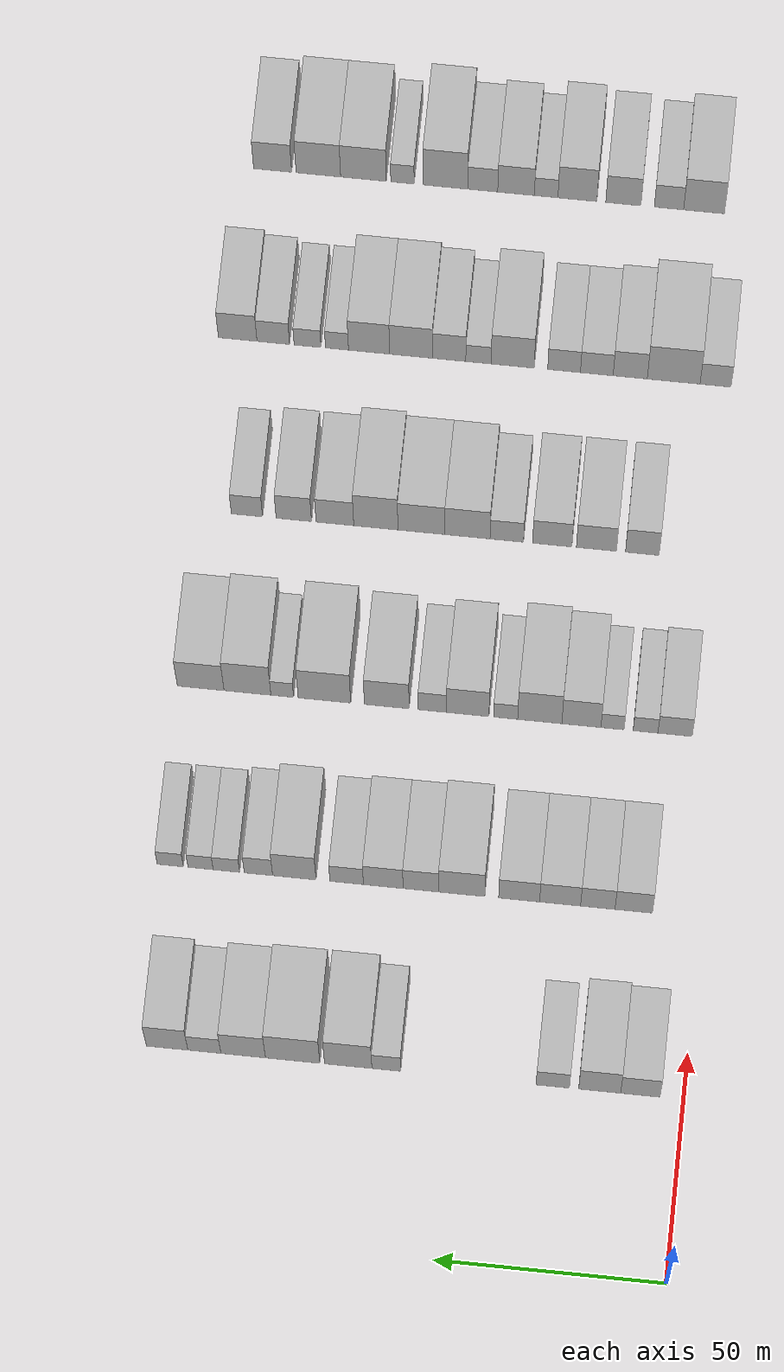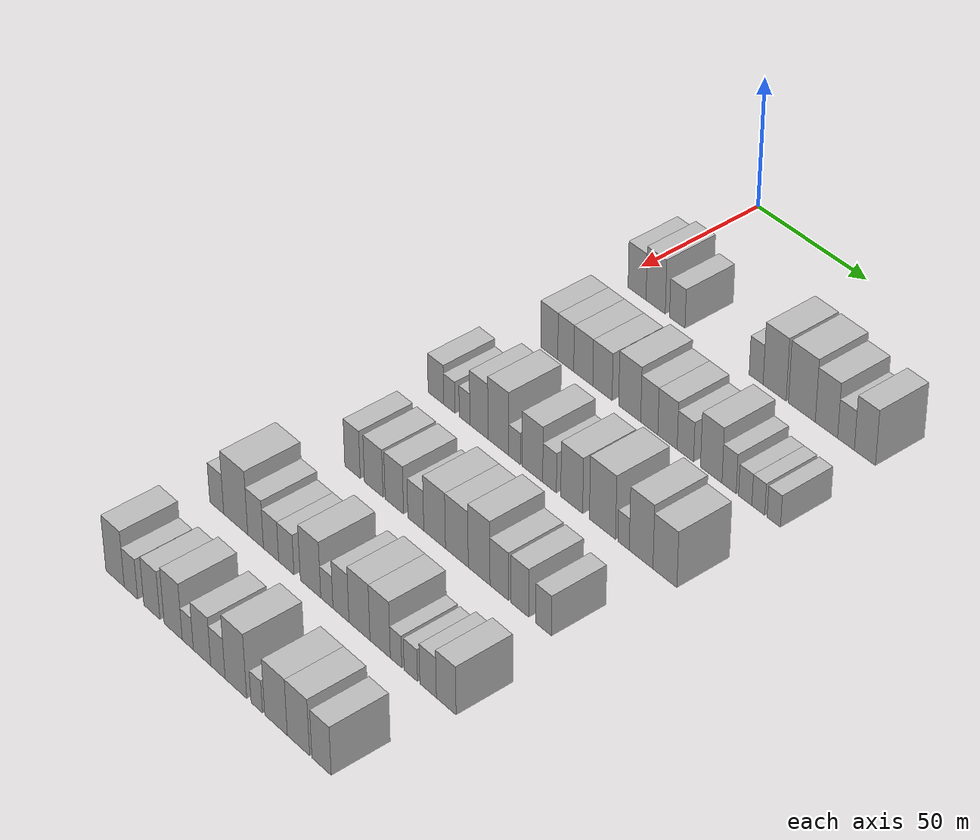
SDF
<sdf version="1.6">
 <world name="default">
  <model name="building_72">
   <static>1</static>
   <pose>50.0000 9.4047 0 0.000000 0.000000 0.000000</pose>
   <link name="link">
    <pose>0 0 9.00 0 0 0</pose>
    <collision name="collision"><geometry><box><size>20.0000 8.4720 18.0000</size></box></geometry></collision>
    <visual name="visual">
     <cast_shadows>0</cast_shadows>
     <geometry><box><size>20.0000 8.4720 18.0000</size></box></geometry>
     <material>
      <script>
       <uri>model://HANNAS_wall/materials/scripts</uri>
       <uri>model://HANNAS_wall/materials/textures</uri>
       <name>vrc/HANNAS_wall</name>
      </script>
     </material>
    </visual>
   </link>
  </model>
  <model name="building_73">
   <static>1</static>
   <pose>50.0000 18.1505 0 0.000000 0.000000 0.000000</pose>
   <link name="link">
    <pose>0 0 10.50 0 0 0</pose>
    <collision name="collision"><geometry><box><size>20.0000 9.0196 21.0000</size></box></geometry></collision>
    <visual name="visual">
     <cast_shadows>0</cast_shadows>
     <geometry><box><size>20.0000 9.0196 21.0000</size></box></geometry>
     <material>
      <script>
       <uri>model://HANNAS_wall/materials/scripts</uri>
       <uri>model://HANNAS_wall/materials/textures</uri>
       <name>vrc/HANNAS_wall</name>
      </script>
     </material>
    </visual>
   </link>
  </model>
  <model name="building_74">
   <static>1</static>
   <pose>50.0000 28.2529 0 0.000000 0.000000 0.000000</pose>
   <link name="link">
    <pose>0 0 7.50 0 0 0</pose>
    <collision name="collision"><geometry><box><size>20.0000 7.1850 15.0000</size></box></geometry></collision>
    <visual name="visual">
     <cast_shadows>0</cast_shadows>
     <geometry><box><size>20.0000 7.1850 15.0000</size></box></geometry>
     <material>
      <script>
       <uri>model://HANNAS_wall/materials/scripts</uri>
       <uri>model://HANNAS_wall/materials/textures</uri>
       <name>vrc/HANNAS_wall</name>
      </script>
     </material>
    </visual>
   </link>
  </model>
  <model name="building_75">
   <static>1</static>
   <pose>50.0000 64.1565 0 0.000000 0.000000 0.000000</pose>
   <link name="link">
    <pose>0 0 7.50 0 0 0</pose>
    <collision name="collision"><geometry><box><size>20.0000 6.2074 15.0000</size></box></geometry></collision>
    <visual name="visual">
     <cast_shadows>0</cast_shadows>
     <geometry><box><size>20.0000 6.2074 15.0000</size></box></geometry>
     <material>
      <script>
       <uri>model://HANNAS_wall/materials/scripts</uri>
       <uri>model://HANNAS_wall/materials/textures</uri>
       <name>vrc/HANNAS_wall</name>
      </script>
     </material>
    </visual>
   </link>
  </model>
  <model name="building_76">
   <static>1</static>
   <pose>50.0000 72.3651 0 0.000000 0.000000 0.000000</pose>
   <link name="link">
    <pose>0 0 12.00 0 0 0</pose>
    <collision name="collision"><geometry><box><size>20.0000 10.2096 24.0000</size></box></geometry></collision>
    <visual name="visual">
     <cast_shadows>0</cast_shadows>
     <geometry><box><size>20.0000 10.2096 24.0000</size></box></geometry>
     <material>
      <script>
       <uri>model://HANNAS_wall/materials/scripts</uri>
       <uri>model://HANNAS_wall/materials/textures</uri>
       <name>vrc/HANNAS_wall</name>
      </script>
     </material>
    </visual>
   </link>
  </model>
  <model name="building_77">
   <static>1</static>
   <pose>50.0000 84.3495 0 0.000000 0.000000 0.000000</pose>
   <link name="link">
    <pose>0 0 12.00 0 0 0</pose>
    <collision name="collision"><geometry><box><size>20.0000 11.7593 24.0000</size></box></geometry></collision>
    <visual name="visual">
     <cast_shadows>0</cast_shadows>
     <geometry><box><size>20.0000 11.7593 24.0000</size></box></geometry>
     <material>
      <script>
       <uri>model://HANNAS_wall/materials/scripts</uri>
       <uri>model://HANNAS_wall/materials/textures</uri>
       <name>vrc/HANNAS_wall</name>
      </script>
     </material>
    </visual>
   </link>
  </model>
  <model name="building_78">
   <static>1</static>
   <pose>50.0000 95.0453 0 0.000000 0.000000 0.000000</pose>
   <link name="link">
    <pose>0 0 10.50 0 0 0</pose>
    <collision name="collision"><geometry><box><size>20.0000 9.6323 21.0000</size></box></geometry></collision>
    <visual name="visual">
     <cast_shadows>0</cast_shadows>
     <geometry><box><size>20.0000 9.6323 21.0000</size></box></geometry>
     <material>
      <script>
       <uri>model://HANNAS_wall/materials/scripts</uri>
       <uri>model://HANNAS_wall/materials/textures</uri>
       <name>vrc/HANNAS_wall</name>
      </script>
     </material>
    </visual>
   </link>
  </model>
  <model name="building_79">
   <static>1</static>
   <pose>50.0000 103.4355 0 0.000000 0.000000 0.000000</pose>
   <link name="link">
    <pose>0 0 7.50 0 0 0</pose>
    <collision name="collision"><geometry><box><size>20.0000 7.1480 15.0000</size></box></geometry></collision>
    <visual name="visual">
     <cast_shadows>0</cast_shadows>
     <geometry><box><size>20.0000 7.1480 15.0000</size></box></geometry>
     <material>
      <script>
       <uri>model://HANNAS_wall/materials/scripts</uri>
       <uri>model://HANNAS_wall/materials/textures</uri>
       <name>vrc/HANNAS_wall</name>
      </script>
     </material>
    </visual>
   </link>
  </model>
  <model name="building_80">
   <static>1</static>
   <pose>50.0000 111.4917 0 0.000000 0.000000 0.000000</pose>
   <link name="link">
    <pose>0 0 10.50 0 0 0</pose>
    <collision name="collision"><geometry><box><size>20.0000 8.9645 21.0000</size></box></geometry></collision>
    <visual name="visual">
     <cast_shadows>0</cast_shadows>
     <geometry><box><size>20.0000 8.9645 21.0000</size></box></geometry>
     <material>
      <script>
       <uri>model://HANNAS_wall/materials/scripts</uri>
       <uri>model://HANNAS_wall/materials/textures</uri>
       <name>vrc/HANNAS_wall</name>
      </script>
     </material>
    </visual>
   </link>
  </model>
  <model name="building_209">
   <static>1</static>
   <pose>90.0000 14.5607 0 0.000000 0.000000 0.000000</pose>
   <link name="link">
    <pose>0 0 9.00 0 0 0</pose>
    <collision name="collision"><geometry><box><size>20.0000 8.1096 18.0000</size></box></geometry></collision>
    <visual name="visual">
     <cast_shadows>0</cast_shadows>
     <geometry><box><size>20.0000 8.1096 18.0000</size></box></geometry>
     <material>
      <script>
       <uri>model://HANNAS_wall/materials/scripts</uri>
       <uri>model://HANNAS_wall/materials/textures</uri>
       <name>vrc/HANNAS_wall</name>
      </script>
     </material>
    </visual>
   </link>
  </model>
  <model name="building_210">
   <static>1</static>
   <pose>90.0000 22.3473 0 0.000000 0.000000 0.000000</pose>
   <link name="link">
    <pose>0 0 9.00 0 0 0</pose>
    <collision name="collision"><geometry><box><size>20.0000 7.4636 18.0000</size></box></geometry></collision>
    <visual name="visual">
     <cast_shadows>0</cast_shadows>
     <geometry><box><size>20.0000 7.4636 18.0000</size></box></geometry>
     <material>
      <script>
       <uri>model://HANNAS_wall/materials/scripts</uri>
       <uri>model://HANNAS_wall/materials/textures</uri>
       <name>vrc/HANNAS_wall</name>
      </script>
     </material>
    </visual>
   </link>
  </model>
  <model name="building_211">
   <static>1</static>
   <pose>90.0000 30.5261 0 0.000000 0.000000 0.000000</pose>
   <link name="link">
    <pose>0 0 9.00 0 0 0</pose>
    <collision name="collision"><geometry><box><size>20.0000 8.8940 18.0000</size></box></geometry></collision>
    <visual name="visual">
     <cast_shadows>0</cast_shadows>
     <geometry><box><size>20.0000 8.8940 18.0000</size></box></geometry>
     <material>
      <script>
       <uri>model://HANNAS_wall/materials/scripts</uri>
       <uri>model://HANNAS_wall/materials/textures</uri>
       <name>vrc/HANNAS_wall</name>
      </script>
     </material>
    </visual>
   </link>
  </model>
  <model name="building_212">
   <static>1</static>
   <pose>90.0000 39.4231 0 0.000000 0.000000 0.000000</pose>
   <link name="link">
    <pose>0 0 9.00 0 0 0</pose>
    <collision name="collision"><geometry><box><size>20.0000 8.8999 18.0000</size></box></geometry></collision>
    <visual name="visual">
     <cast_shadows>0</cast_shadows>
     <geometry><box><size>20.0000 8.8999 18.0000</size></box></geometry>
     <material>
      <script>
       <uri>model://HANNAS_wall/materials/scripts</uri>
       <uri>model://HANNAS_wall/materials/textures</uri>
       <name>vrc/HANNAS_wall</name>
      </script>
     </material>
    </visual>
   </link>
  </model>
  <model name="building_213">
   <static>1</static>
   <pose>90.0000 51.8871 0 0.000000 0.000000 0.000000</pose>
   <link name="link">
    <pose>0 0 10.50 0 0 0</pose>
    <collision name="collision"><geometry><box><size>20.0000 10.0283 21.0000</size></box></geometry></collision>
    <visual name="visual">
     <cast_shadows>0</cast_shadows>
     <geometry><box><size>20.0000 10.0283 21.0000</size></box></geometry>
     <material>
      <script>
       <uri>model://HANNAS_wall/materials/scripts</uri>
       <uri>model://HANNAS_wall/materials/textures</uri>
       <name>vrc/HANNAS_wall</name>
      </script>
     </material>
    </visual>
   </link>
  </model>
  <model name="building_214">
   <static>1</static>
   <pose>90.0000 60.7719 0 0.000000 0.000000 0.000000</pose>
   <link name="link">
    <pose>0 0 9.00 0 0 0</pose>
    <collision name="collision"><geometry><box><size>20.0000 7.7412 18.0000</size></box></geometry></collision>
    <visual name="visual">
     <cast_shadows>0</cast_shadows>
     <geometry><box><size>20.0000 7.7412 18.0000</size></box></geometry>
     <material>
      <script>
       <uri>model://HANNAS_wall/materials/scripts</uri>
       <uri>model://HANNAS_wall/materials/textures</uri>
       <name>vrc/HANNAS_wall</name>
      </script>
     </material>
    </visual>
   </link>
  </model>
  <model name="building_215">
   <static>1</static>
   <pose>90.0000 68.9559 0 0.000000 0.000000 0.000000</pose>
   <link name="link">
    <pose>0 0 9.00 0 0 0</pose>
    <collision name="collision"><geometry><box><size>20.0000 8.6268 18.0000</size></box></geometry></collision>
    <visual name="visual">
     <cast_shadows>0</cast_shadows>
     <geometry><box><size>20.0000 8.6268 18.0000</size></box></geometry>
     <material>
      <script>
       <uri>model://HANNAS_wall/materials/scripts</uri>
       <uri>model://HANNAS_wall/materials/textures</uri>
       <name>vrc/HANNAS_wall</name>
      </script>
     </material>
    </visual>
   </link>
  </model>
  <model name="building_216">
   <static>1</static>
   <pose>90.0000 76.9167 0 0.000000 0.000000 0.000000</pose>
   <link name="link">
    <pose>0 0 7.50 0 0 0</pose>
    <collision name="collision"><geometry><box><size>20.0000 7.2947 15.0000</size></box></geometry></collision>
    <visual name="visual">
     <cast_shadows>0</cast_shadows>
     <geometry><box><size>20.0000 7.2947 15.0000</size></box></geometry>
     <material>
      <script>
       <uri>model://HANNAS_wall/materials/scripts</uri>
       <uri>model://HANNAS_wall/materials/textures</uri>
       <name>vrc/HANNAS_wall</name>
      </script>
     </material>
    </visual>
   </link>
  </model>
  <model name="building_217">
   <static>1</static>
   <pose>90.0000 88.2848 0 0.000000 0.000000 0.000000</pose>
   <link name="link">
    <pose>0 0 10.50 0 0 0</pose>
    <collision name="collision"><geometry><box><size>20.0000 9.4414 21.0000</size></box></geometry></collision>
    <visual name="visual">
     <cast_shadows>0</cast_shadows>
     <geometry><box><size>20.0000 9.4414 21.0000</size></box></geometry>
     <material>
      <script>
       <uri>model://HANNAS_wall/materials/scripts</uri>
       <uri>model://HANNAS_wall/materials/textures</uri>
       <name>vrc/HANNAS_wall</name>
      </script>
     </material>
    </visual>
   </link>
  </model>
  <model name="building_218">
   <static>1</static>
   <pose>90.0000 96.0910 0 0.000000 0.000000 0.000000</pose>
   <link name="link">
    <pose>0 0 7.50 0 0 0</pose>
    <collision name="collision"><geometry><box><size>20.0000 6.1710 15.0000</size></box></geometry></collision>
    <visual name="visual">
     <cast_shadows>0</cast_shadows>
     <geometry><box><size>20.0000 6.1710 15.0000</size></box></geometry>
     <material>
      <script>
       <uri>model://HANNAS_wall/materials/scripts</uri>
       <uri>model://HANNAS_wall/materials/textures</uri>
       <name>vrc/HANNAS_wall</name>
      </script>
     </material>
    </visual>
   </link>
  </model>
  <model name="building_219">
   <static>1</static>
   <pose>90.0000 103.0612 0 0.000000 0.000000 0.000000</pose>
   <link name="link">
    <pose>0 0 6.00 0 0 0</pose>
    <collision name="collision"><geometry><box><size>20.0000 5.7694 12.0000</size></box></geometry></collision>
    <visual name="visual">
     <cast_shadows>0</cast_shadows>
     <geometry><box><size>20.0000 5.7694 12.0000</size></box></geometry>
     <material>
      <script>
       <uri>model://HANNAS_wall/materials/scripts</uri>
       <uri>model://HANNAS_wall/materials/textures</uri>
       <name>vrc/HANNAS_wall</name>
      </script>
     </material>
    </visual>
   </link>
  </model>
  <model name="building_220">
   <static>1</static>
   <pose>90.0000 108.6950 0 0.000000 0.000000 0.000000</pose>
   <link name="link">
    <pose>0 0 6.00 0 0 0</pose>
    <collision name="collision"><geometry><box><size>20.0000 5.4980 12.0000</size></box></geometry></collision>
    <visual name="visual">
     <cast_shadows>0</cast_shadows>
     <geometry><box><size>20.0000 5.4980 12.0000</size></box></geometry>
     <material>
      <script>
       <uri>model://HANNAS_wall/materials/scripts</uri>
       <uri>model://HANNAS_wall/materials/textures</uri>
       <name>vrc/HANNAS_wall</name>
      </script>
     </material>
    </visual>
   </link>
  </model>
  <model name="building_221">
   <static>1</static>
   <pose>90.0000 115.2895 0 0.000000 0.000000 0.000000</pose>
   <link name="link">
    <pose>0 0 6.00 0 0 0</pose>
    <collision name="collision"><geometry><box><size>20.0000 5.6910 12.0000</size></box></geometry></collision>
    <visual name="visual">
     <cast_shadows>0</cast_shadows>
     <geometry><box><size>20.0000 5.6910 12.0000</size></box></geometry>
     <material>
      <script>
       <uri>model://HANNAS_wall/materials/scripts</uri>
       <uri>model://HANNAS_wall/materials/textures</uri>
       <name>vrc/HANNAS_wall</name>
      </script>
     </material>
    </visual>
   </link>
  </model>
  <model name="building_344">
   <static>1</static>
   <pose>130.0000 9.2505 0 0.000000 0.000000 0.000000</pose>
   <link name="link">
    <pose>0 0 7.50 0 0 0</pose>
    <collision name="collision"><geometry><box><size>20.0000 7.4754 15.0000</size></box></geometry></collision>
    <visual name="visual">
     <cast_shadows>0</cast_shadows>
     <geometry><box><size>20.0000 7.4754 15.0000</size></box></geometry>
     <material>
      <script>
       <uri>model://HANNAS_wall/materials/scripts</uri>
       <uri>model://HANNAS_wall/materials/textures</uri>
       <name>vrc/HANNAS_wall</name>
      </script>
     </material>
    </visual>
   </link>
  </model>
  <model name="building_345">
   <static>1</static>
   <pose>130.0000 15.6910 0 0.000000 0.000000 0.000000</pose>
   <link name="link">
    <pose>0 0 6.00 0 0 0</pose>
    <collision name="collision"><geometry><box><size>20.0000 5.4057 12.0000</size></box></geometry></collision>
    <visual name="visual">
     <cast_shadows>0</cast_shadows>
     <geometry><box><size>20.0000 5.4057 12.0000</size></box></geometry>
     <material>
      <script>
       <uri>model://HANNAS_wall/materials/scripts</uri>
       <uri>model://HANNAS_wall/materials/textures</uri>
       <name>vrc/HANNAS_wall</name>
      </script>
     </material>
    </visual>
   </link>
  </model>
  <model name="building_346">
   <static>1</static>
   <pose>130.0000 22.9291 0 0.000000 0.000000 0.000000</pose>
   <link name="link">
    <pose>0 0 6.00 0 0 0</pose>
    <collision name="collision"><geometry><box><size>20.0000 5.0705 12.0000</size></box></geometry></collision>
    <visual name="visual">
     <cast_shadows>0</cast_shadows>
     <geometry><box><size>20.0000 5.0705 12.0000</size></box></geometry>
     <material>
      <script>
       <uri>model://HANNAS_wall/materials/scripts</uri>
       <uri>model://HANNAS_wall/materials/textures</uri>
       <name>vrc/HANNAS_wall</name>
      </script>
     </material>
    </visual>
   </link>
  </model>
  <model name="building_347">
   <static>1</static>
   <pose>130.0000 29.7317 0 0.000000 0.000000 0.000000</pose>
   <link name="link">
    <pose>0 0 10.50 0 0 0</pose>
    <collision name="collision"><geometry><box><size>20.0000 8.5349 21.0000</size></box></geometry></collision>
    <visual name="visual">
     <cast_shadows>0</cast_shadows>
     <geometry><box><size>20.0000 8.5349 21.0000</size></box></geometry>
     <material>
      <script>
       <uri>model://HANNAS_wall/materials/scripts</uri>
       <uri>model://HANNAS_wall/materials/textures</uri>
       <name>vrc/HANNAS_wall</name>
      </script>
     </material>
    </visual>
   </link>
  </model>
  <model name="building_348">
   <static>1</static>
   <pose>130.0000 38.8301 0 0.000000 0.000000 0.000000</pose>
   <link name="link">
    <pose>0 0 12.00 0 0 0</pose>
    <collision name="collision"><geometry><box><size>20.0000 9.6619 24.0000</size></box></geometry></collision>
    <visual name="visual">
     <cast_shadows>0</cast_shadows>
     <geometry><box><size>20.0000 9.6619 24.0000</size></box></geometry>
     <material>
      <script>
       <uri>model://HANNAS_wall/materials/scripts</uri>
       <uri>model://HANNAS_wall/materials/textures</uri>
       <name>vrc/HANNAS_wall</name>
      </script>
     </material>
    </visual>
   </link>
  </model>
  <model name="building_349">
   <static>1</static>
   <pose>130.0000 46.3055 0 0.000000 0.000000 0.000000</pose>
   <link name="link">
    <pose>0 0 6.00 0 0 0</pose>
    <collision name="collision"><geometry><box><size>20.0000 5.2891 12.0000</size></box></geometry></collision>
    <visual name="visual">
     <cast_shadows>0</cast_shadows>
     <geometry><box><size>20.0000 5.2891 12.0000</size></box></geometry>
     <material>
      <script>
       <uri>model://HANNAS_wall/materials/scripts</uri>
       <uri>model://HANNAS_wall/materials/textures</uri>
       <name>vrc/HANNAS_wall</name>
      </script>
     </material>
    </visual>
   </link>
  </model>
  <model name="building_350">
   <static>1</static>
   <pose>130.0000 54.5984 0 0.000000 0.000000 0.000000</pose>
   <link name="link">
    <pose>0 0 10.50 0 0 0</pose>
    <collision name="collision"><geometry><box><size>20.0000 9.2967 21.0000</size></box></geometry></collision>
    <visual name="visual">
     <cast_shadows>0</cast_shadows>
     <geometry><box><size>20.0000 9.2967 21.0000</size></box></geometry>
     <material>
      <script>
       <uri>model://HANNAS_wall/materials/scripts</uri>
       <uri>model://HANNAS_wall/materials/textures</uri>
       <name>vrc/HANNAS_wall</name>
      </script>
     </material>
    </visual>
   </link>
  </model>
  <model name="building_351">
   <static>1</static>
   <pose>130.0000 62.3341 0 0.000000 0.000000 0.000000</pose>
   <link name="link">
    <pose>0 0 7.50 0 0 0</pose>
    <collision name="collision"><geometry><box><size>20.0000 6.1747 15.0000</size></box></geometry></collision>
    <visual name="visual">
     <cast_shadows>0</cast_shadows>
     <geometry><box><size>20.0000 6.1747 15.0000</size></box></geometry>
     <material>
      <script>
       <uri>model://HANNAS_wall/materials/scripts</uri>
       <uri>model://HANNAS_wall/materials/textures</uri>
       <name>vrc/HANNAS_wall</name>
      </script>
     </material>
    </visual>
   </link>
  </model>
  <model name="building_352">
   <static>1</static>
   <pose>130.0000 72.3209 0 0.000000 0.000000 0.000000</pose>
   <link name="link">
    <pose>0 0 10.50 0 0 0</pose>
    <collision name="collision"><geometry><box><size>20.0000 9.7988 21.0000</size></box></geometry></collision>
    <visual name="visual">
     <cast_shadows>0</cast_shadows>
     <geometry><box><size>20.0000 9.7988 21.0000</size></box></geometry>
     <material>
      <script>
       <uri>model://HANNAS_wall/materials/scripts</uri>
       <uri>model://HANNAS_wall/materials/textures</uri>
       <name>vrc/HANNAS_wall</name>
      </script>
     </material>
    </visual>
   </link>
  </model>
  <model name="building_353">
   <static>1</static>
   <pose>130.0000 85.9807 0 0.000000 0.000000 0.000000</pose>
   <link name="link">
    <pose>0 0 12.00 0 0 0</pose>
    <collision name="collision"><geometry><box><size>20.0000 11.5207 24.0000</size></box></geometry></collision>
    <visual name="visual">
     <cast_shadows>0</cast_shadows>
     <geometry><box><size>20.0000 11.5207 24.0000</size></box></geometry>
     <material>
      <script>
       <uri>model://HANNAS_wall/materials/scripts</uri>
       <uri>model://HANNAS_wall/materials/textures</uri>
       <name>vrc/HANNAS_wall</name>
      </script>
     </material>
    </visual>
   </link>
  </model>
  <model name="building_354">
   <static>1</static>
   <pose>130.0000 95.2330 0 0.000000 0.000000 0.000000</pose>
   <link name="link">
    <pose>0 0 6.00 0 0 0</pose>
    <collision name="collision"><geometry><box><size>20.0000 4.9841 12.0000</size></box></geometry></collision>
    <visual name="visual">
     <cast_shadows>0</cast_shadows>
     <geometry><box><size>20.0000 4.9841 12.0000</size></box></geometry>
     <material>
      <script>
       <uri>model://HANNAS_wall/materials/scripts</uri>
       <uri>model://HANNAS_wall/materials/textures</uri>
       <name>vrc/HANNAS_wall</name>
      </script>
     </material>
    </visual>
   </link>
  </model>
  <model name="building_355">
   <static>1</static>
   <pose>130.0000 102.8596 0 0.000000 0.000000 0.000000</pose>
   <link name="link">
    <pose>0 0 12.00 0 0 0</pose>
    <collision name="collision"><geometry><box><size>20.0000 10.2691 24.0000</size></box></geometry></collision>
    <visual name="visual">
     <cast_shadows>0</cast_shadows>
     <geometry><box><size>20.0000 10.2691 24.0000</size></box></geometry>
     <material>
      <script>
       <uri>model://HANNAS_wall/materials/scripts</uri>
       <uri>model://HANNAS_wall/materials/textures</uri>
       <name>vrc/HANNAS_wall</name>
      </script>
     </material>
    </visual>
   </link>
  </model>
  <model name="building_356">
   <static>1</static>
   <pose>130.0000 113.1212 0 0.000000 0.000000 0.000000</pose>
   <link name="link">
    <pose>0 0 10.50 0 0 0</pose>
    <collision name="collision"><geometry><box><size>20.0000 10.2542 21.0000</size></box></geometry></collision>
    <visual name="visual">
     <cast_shadows>0</cast_shadows>
     <geometry><box><size>20.0000 10.2542 21.0000</size></box></geometry>
     <material>
      <script>
       <uri>model://HANNAS_wall/materials/scripts</uri>
       <uri>model://HANNAS_wall/materials/textures</uri>
       <name>vrc/HANNAS_wall</name>
      </script>
     </material>
    </visual>
   </link>
  </model>
  <model name="building_489">
   <static>1</static>
   <pose>170.0000 20.1332 0 0.000000 0.000000 0.000000</pose>
   <link name="link">
    <pose>0 0 9.00 0 0 0</pose>
    <collision name="collision"><geometry><box><size>20.0000 7.3868 18.0000</size></box></geometry></collision>
    <visual name="visual">
     <cast_shadows>0</cast_shadows>
     <geometry><box><size>20.0000 7.3868 18.0000</size></box></geometry>
     <material>
      <script>
       <uri>model://HANNAS_wall/materials/scripts</uri>
       <uri>model://HANNAS_wall/materials/textures</uri>
       <name>vrc/HANNAS_wall</name>
      </script>
     </material>
    </visual>
   </link>
  </model>
  <model name="building_490">
   <static>1</static>
   <pose>170.0000 30.2365 0 0.000000 0.000000 0.000000</pose>
   <link name="link">
    <pose>0 0 9.00 0 0 0</pose>
    <collision name="collision"><geometry><box><size>20.0000 8.8199 18.0000</size></box></geometry></collision>
    <visual name="visual">
     <cast_shadows>0</cast_shadows>
     <geometry><box><size>20.0000 8.8199 18.0000</size></box></geometry>
     <material>
      <script>
       <uri>model://HANNAS_wall/materials/scripts</uri>
       <uri>model://HANNAS_wall/materials/textures</uri>
       <name>vrc/HANNAS_wall</name>
      </script>
     </material>
    </visual>
   </link>
  </model>
  <model name="building_491">
   <static>1</static>
   <pose>170.0000 39.9714 0 0.000000 0.000000 0.000000</pose>
   <link name="link">
    <pose>0 0 9.00 0 0 0</pose>
    <collision name="collision"><geometry><box><size>20.0000 8.6499 18.0000</size></box></geometry></collision>
    <visual name="visual">
     <cast_shadows>0</cast_shadows>
     <geometry><box><size>20.0000 8.6499 18.0000</size></box></geometry>
     <material>
      <script>
       <uri>model://HANNAS_wall/materials/scripts</uri>
       <uri>model://HANNAS_wall/materials/textures</uri>
       <name>vrc/HANNAS_wall</name>
      </script>
     </material>
    </visual>
   </link>
  </model>
  <model name="building_492">
   <static>1</static>
   <pose>170.0000 49.9900 0 0.000000 0.000000 0.000000</pose>
   <link name="link">
    <pose>0 0 7.50 0 0 0</pose>
    <collision name="collision"><geometry><box><size>20.0000 7.3874 15.0000</size></box></geometry></collision>
    <visual name="visual">
     <cast_shadows>0</cast_shadows>
     <geometry><box><size>20.0000 7.3874 15.0000</size></box></geometry>
     <material>
      <script>
       <uri>model://HANNAS_wall/materials/scripts</uri>
       <uri>model://HANNAS_wall/materials/textures</uri>
       <name>vrc/HANNAS_wall</name>
      </script>
     </material>
    </visual>
   </link>
  </model>
  <model name="building_493">
   <static>1</static>
   <pose>170.0000 58.6641 0 0.000000 0.000000 0.000000</pose>
   <link name="link">
    <pose>0 0 10.50 0 0 0</pose>
    <collision name="collision"><geometry><box><size>20.0000 9.9608 21.0000</size></box></geometry></collision>
    <visual name="visual">
     <cast_shadows>0</cast_shadows>
     <geometry><box><size>20.0000 9.9608 21.0000</size></box></geometry>
     <material>
      <script>
       <uri>model://HANNAS_wall/materials/scripts</uri>
       <uri>model://HANNAS_wall/materials/textures</uri>
       <name>vrc/HANNAS_wall</name>
      </script>
     </material>
    </visual>
   </link>
  </model>
  <model name="building_494">
   <static>1</static>
   <pose>170.0000 68.8209 0 0.000000 0.000000 0.000000</pose>
   <link name="link">
    <pose>0 0 10.50 0 0 0</pose>
    <collision name="collision"><geometry><box><size>20.0000 10.3527 21.0000</size></box></geometry></collision>
    <visual name="visual">
     <cast_shadows>0</cast_shadows>
     <geometry><box><size>20.0000 10.3527 21.0000</size></box></geometry>
     <material>
      <script>
       <uri>model://HANNAS_wall/materials/scripts</uri>
       <uri>model://HANNAS_wall/materials/textures</uri>
       <name>vrc/HANNAS_wall</name>
      </script>
     </material>
    </visual>
   </link>
  </model>
  <model name="building_495">
   <static>1</static>
   <pose>170.0000 78.8759 0 0.000000 0.000000 0.000000</pose>
   <link name="link">
    <pose>0 0 12.00 0 0 0</pose>
    <collision name="collision"><geometry><box><size>20.0000 9.7574 24.0000</size></box></geometry></collision>
    <visual name="visual">
     <cast_shadows>0</cast_shadows>
     <geometry><box><size>20.0000 9.7574 24.0000</size></box></geometry>
     <material>
      <script>
       <uri>model://HANNAS_wall/materials/scripts</uri>
       <uri>model://HANNAS_wall/materials/textures</uri>
       <name>vrc/HANNAS_wall</name>
      </script>
     </material>
    </visual>
   </link>
  </model>
  <model name="building_496">
   <static>1</static>
   <pose>170.0000 87.9169 0 0.000000 0.000000 0.000000</pose>
   <link name="link">
    <pose>0 0 9.00 0 0 0</pose>
    <collision name="collision"><geometry><box><size>20.0000 8.3247 18.0000</size></box></geometry></collision>
    <visual name="visual">
     <cast_shadows>0</cast_shadows>
     <geometry><box><size>20.0000 8.3247 18.0000</size></box></geometry>
     <material>
      <script>
       <uri>model://HANNAS_wall/materials/scripts</uri>
       <uri>model://HANNAS_wall/materials/textures</uri>
       <name>vrc/HANNAS_wall</name>
      </script>
     </material>
    </visual>
   </link>
  </model>
  <model name="building_497">
   <static>1</static>
   <pose>170.0000 96.9867 0 0.000000 0.000000 0.000000</pose>
   <link name="link">
    <pose>0 0 9.00 0 0 0</pose>
    <collision name="collision"><geometry><box><size>20.0000 7.8148 18.0000</size></box></geometry></collision>
    <visual name="visual">
     <cast_shadows>0</cast_shadows>
     <geometry><box><size>20.0000 7.8148 18.0000</size></box></geometry>
     <material>
      <script>
       <uri>model://HANNAS_wall/materials/scripts</uri>
       <uri>model://HANNAS_wall/materials/textures</uri>
       <name>vrc/HANNAS_wall</name>
      </script>
     </material>
    </visual>
   </link>
  </model>
  <model name="building_498">
   <static>1</static>
   <pose>170.0000 107.3443 0 0.000000 0.000000 0.000000</pose>
   <link name="link">
    <pose>0 0 7.50 0 0 0</pose>
    <collision name="collision"><geometry><box><size>20.0000 6.9006 15.0000</size></box></geometry></collision>
    <visual name="visual">
     <cast_shadows>0</cast_shadows>
     <geometry><box><size>20.0000 6.9006 15.0000</size></box></geometry>
     <material>
      <script>
       <uri>model://HANNAS_wall/materials/scripts</uri>
       <uri>model://HANNAS_wall/materials/textures</uri>
       <name>vrc/HANNAS_wall</name>
      </script>
     </material>
    </visual>
   </link>
  </model>
  <model name="building_631">
   <static>1</static>
   <pose>210.0000 7.6143 0 0.000000 0.000000 0.000000</pose>
   <link name="link">
    <pose>0 0 7.50 0 0 0</pose>
    <collision name="collision"><geometry><box><size>20.0000 6.8602 15.0000</size></box></geometry></collision>
    <visual name="visual">
     <cast_shadows>0</cast_shadows>
     <geometry><box><size>20.0000 6.8602 15.0000</size></box></geometry>
     <material>
      <script>
       <uri>model://HANNAS_wall/materials/scripts</uri>
       <uri>model://HANNAS_wall/materials/textures</uri>
       <name>vrc/HANNAS_wall</name>
      </script>
     </material>
    </visual>
   </link>
  </model>
  <model name="building_632">
   <static>1</static>
   <pose>210.0000 16.8959 0 0.000000 0.000000 0.000000</pose>
   <link name="link">
    <pose>0 0 12.00 0 0 0</pose>
    <collision name="collision"><geometry><box><size>20.0000 11.7031 24.0000</size></box></geometry></collision>
    <visual name="visual">
     <cast_shadows>0</cast_shadows>
     <geometry><box><size>20.0000 11.7031 24.0000</size></box></geometry>
     <material>
      <script>
       <uri>model://HANNAS_wall/materials/scripts</uri>
       <uri>model://HANNAS_wall/materials/textures</uri>
       <name>vrc/HANNAS_wall</name>
      </script>
     </material>
    </visual>
   </link>
  </model>
  <model name="building_633">
   <static>1</static>
   <pose>210.0000 26.5314 0 0.000000 0.000000 0.000000</pose>
   <link name="link">
    <pose>0 0 9.00 0 0 0</pose>
    <collision name="collision"><geometry><box><size>20.0000 7.5679 18.0000</size></box></geometry></collision>
    <visual name="visual">
     <cast_shadows>0</cast_shadows>
     <geometry><box><size>20.0000 7.5679 18.0000</size></box></geometry>
     <material>
      <script>
       <uri>model://HANNAS_wall/materials/scripts</uri>
       <uri>model://HANNAS_wall/materials/textures</uri>
       <name>vrc/HANNAS_wall</name>
      </script>
     </material>
    </visual>
   </link>
  </model>
  <model name="building_634">
   <static>1</static>
   <pose>210.0000 33.9476 0 0.000000 0.000000 0.000000</pose>
   <link name="link">
    <pose>0 0 7.50 0 0 0</pose>
    <collision name="collision"><geometry><box><size>20.0000 7.2646 15.0000</size></box></geometry></collision>
    <visual name="visual">
     <cast_shadows>0</cast_shadows>
     <geometry><box><size>20.0000 7.2646 15.0000</size></box></geometry>
     <material>
      <script>
       <uri>model://HANNAS_wall/materials/scripts</uri>
       <uri>model://HANNAS_wall/materials/textures</uri>
       <name>vrc/HANNAS_wall</name>
      </script>
     </material>
    </visual>
   </link>
  </model>
  <model name="building_635">
   <static>1</static>
   <pose>210.0000 41.2103 0 0.000000 0.000000 0.000000</pose>
   <link name="link">
    <pose>0 0 7.50 0 0 0</pose>
    <collision name="collision"><geometry><box><size>20.0000 7.2607 15.0000</size></box></geometry></collision>
    <visual name="visual">
     <cast_shadows>0</cast_shadows>
     <geometry><box><size>20.0000 7.2607 15.0000</size></box></geometry>
     <material>
      <script>
       <uri>model://HANNAS_wall/materials/scripts</uri>
       <uri>model://HANNAS_wall/materials/textures</uri>
       <name>vrc/HANNAS_wall</name>
      </script>
     </material>
    </visual>
   </link>
  </model>
  <model name="building_636">
   <static>1</static>
   <pose>210.0000 52.6169 0 0.000000 0.000000 0.000000</pose>
   <link name="link">
    <pose>0 0 10.50 0 0 0</pose>
    <collision name="collision"><geometry><box><size>20.0000 9.5527 21.0000</size></box></geometry></collision>
    <visual name="visual">
     <cast_shadows>0</cast_shadows>
     <geometry><box><size>20.0000 9.5527 21.0000</size></box></geometry>
     <material>
      <script>
       <uri>model://HANNAS_wall/materials/scripts</uri>
       <uri>model://HANNAS_wall/materials/textures</uri>
       <name>vrc/HANNAS_wall</name>
      </script>
     </material>
    </visual>
   </link>
  </model>
  <model name="building_637">
   <static>1</static>
   <pose>210.0000 60.2183 0 0.000000 0.000000 0.000000</pose>
   <link name="link">
    <pose>0 0 6.00 0 0 0</pose>
    <collision name="collision"><geometry><box><size>20.0000 5.6500 12.0000</size></box></geometry></collision>
    <visual name="visual">
     <cast_shadows>0</cast_shadows>
     <geometry><box><size>20.0000 5.6500 12.0000</size></box></geometry>
     <material>
      <script>
       <uri>model://HANNAS_wall/materials/scripts</uri>
       <uri>model://HANNAS_wall/materials/textures</uri>
       <name>vrc/HANNAS_wall</name>
      </script>
     </material>
    </visual>
   </link>
  </model>
  <model name="building_638">
   <static>1</static>
   <pose>210.0000 66.7285 0 0.000000 0.000000 0.000000</pose>
   <link name="link">
    <pose>0 0 9.00 0 0 0</pose>
    <collision name="collision"><geometry><box><size>20.0000 7.3704 18.0000</size></box></geometry></collision>
    <visual name="visual">
     <cast_shadows>0</cast_shadows>
     <geometry><box><size>20.0000 7.3704 18.0000</size></box></geometry>
     <material>
      <script>
       <uri>model://HANNAS_wall/materials/scripts</uri>
       <uri>model://HANNAS_wall/materials/textures</uri>
       <name>vrc/HANNAS_wall</name>
      </script>
     </material>
    </visual>
   </link>
  </model>
  <model name="building_639">
   <static>1</static>
   <pose>210.0000 75.1908 0 0.000000 0.000000 0.000000</pose>
   <link name="link">
    <pose>0 0 10.50 0 0 0</pose>
    <collision name="collision"><geometry><box><size>20.0000 9.5542 21.0000</size></box></geometry></collision>
    <visual name="visual">
     <cast_shadows>0</cast_shadows>
     <geometry><box><size>20.0000 9.5542 21.0000</size></box></geometry>
     <material>
      <script>
       <uri>model://HANNAS_wall/materials/scripts</uri>
       <uri>model://HANNAS_wall/materials/textures</uri>
       <name>vrc/HANNAS_wall</name>
      </script>
     </material>
    </visual>
   </link>
  </model>
  <model name="building_640">
   <static>1</static>
   <pose>210.0000 84.5444 0 0.000000 0.000000 0.000000</pose>
   <link name="link">
    <pose>0 0 10.50 0 0 0</pose>
    <collision name="collision"><geometry><box><size>20.0000 9.1529 21.0000</size></box></geometry></collision>
    <visual name="visual">
     <cast_shadows>0</cast_shadows>
     <geometry><box><size>20.0000 9.1529 21.0000</size></box></geometry>
     <material>
      <script>
       <uri>model://HANNAS_wall/materials/scripts</uri>
       <uri>model://HANNAS_wall/materials/textures</uri>
       <name>vrc/HANNAS_wall</name>
      </script>
     </material>
    </visual>
   </link>
  </model>
  <model name="building_641">
   <static>1</static>
   <pose>210.0000 91.6838 0 0.000000 0.000000 0.000000</pose>
   <link name="link">
    <pose>0 0 6.00 0 0 0</pose>
    <collision name="collision"><geometry><box><size>20.0000 5.1259 12.0000</size></box></geometry></collision>
    <visual name="visual">
     <cast_shadows>0</cast_shadows>
     <geometry><box><size>20.0000 5.1259 12.0000</size></box></geometry>
     <material>
      <script>
       <uri>model://HANNAS_wall/materials/scripts</uri>
       <uri>model://HANNAS_wall/materials/textures</uri>
       <name>vrc/HANNAS_wall</name>
      </script>
     </material>
    </visual>
   </link>
  </model>
  <model name="building_642">
   <static>1</static>
   <pose>210.0000 98.2362 0 0.000000 0.000000 0.000000</pose>
   <link name="link">
    <pose>0 0 6.00 0 0 0</pose>
    <collision name="collision"><geometry><box><size>20.0000 5.9788 12.0000</size></box></geometry></collision>
    <visual name="visual">
     <cast_shadows>0</cast_shadows>
     <geometry><box><size>20.0000 5.9788 12.0000</size></box></geometry>
     <material>
      <script>
       <uri>model://HANNAS_wall/materials/scripts</uri>
       <uri>model://HANNAS_wall/materials/textures</uri>
       <name>vrc/HANNAS_wall</name>
      </script>
     </material>
    </visual>
   </link>
  </model>
  <model name="building_643">
   <static>1</static>
   <pose>210.0000 105.8591 0 0.000000 0.000000 0.000000</pose>
   <link name="link">
    <pose>0 0 7.50 0 0 0</pose>
    <collision name="collision"><geometry><box><size>20.0000 7.2670 15.0000</size></box></geometry></collision>
    <visual name="visual">
     <cast_shadows>0</cast_shadows>
     <geometry><box><size>20.0000 7.2670 15.0000</size></box></geometry>
     <material>
      <script>
       <uri>model://HANNAS_wall/materials/scripts</uri>
       <uri>model://HANNAS_wall/materials/textures</uri>
       <name>vrc/HANNAS_wall</name>
      </script>
     </material>
    </visual>
   </link>
  </model>
  <model name="building_644">
   <static>1</static>
   <pose>210.0000 113.7820 0 0.000000 0.000000 0.000000</pose>
   <link name="link">
    <pose>0 0 9.00 0 0 0</pose>
    <collision name="collision"><geometry><box><size>20.0000 8.5789 18.0000</size></box></geometry></collision>
    <visual name="visual">
     <cast_shadows>0</cast_shadows>
     <geometry><box><size>20.0000 8.5789 18.0000</size></box></geometry>
     <material>
      <script>
       <uri>model://HANNAS_wall/materials/scripts</uri>
       <uri>model://HANNAS_wall/materials/textures</uri>
       <name>vrc/HANNAS_wall</name>
      </script>
     </material>
    </visual>
   </link>
  </model>
  <model name="building_775">
   <static>1</static>
   <pose>250.0000 13.7879 0 0.000000 0.000000 0.000000</pose>
   <link name="link">
    <pose>0 0 10.50 0 0 0</pose>
    <collision name="collision"><geometry><box><size>20.0000 9.1134 21.0000</size></box></geometry></collision>
    <visual name="visual">
     <cast_shadows>0</cast_shadows>
     <geometry><box><size>20.0000 9.1134 21.0000</size></box></geometry>
     <material>
      <script>
       <uri>model://HANNAS_wall/materials/scripts</uri>
       <uri>model://HANNAS_wall/materials/textures</uri>
       <name>vrc/HANNAS_wall</name>
      </script>
     </material>
    </visual>
   </link>
  </model>
  <model name="building_776">
   <static>1</static>
   <pose>250.0000 21.6121 0 0.000000 0.000000 0.000000</pose>
   <link name="link">
    <pose>0 0 7.50 0 0 0</pose>
    <collision name="collision"><geometry><box><size>20.0000 6.5350 15.0000</size></box></geometry></collision>
    <visual name="visual">
     <cast_shadows>0</cast_shadows>
     <geometry><box><size>20.0000 6.5350 15.0000</size></box></geometry>
     <material>
      <script>
       <uri>model://HANNAS_wall/materials/scripts</uri>
       <uri>model://HANNAS_wall/materials/textures</uri>
       <name>vrc/HANNAS_wall</name>
      </script>
     </material>
    </visual>
   </link>
  </model>
  <model name="building_777">
   <static>1</static>
   <pose>250.0000 31.8043 0 0.000000 0.000000 0.000000</pose>
   <link name="link">
    <pose>0 0 9.00 0 0 0</pose>
    <collision name="collision"><geometry><box><size>20.0000 7.8495 18.0000</size></box></geometry></collision>
    <visual name="visual">
     <cast_shadows>0</cast_shadows>
     <geometry><box><size>20.0000 7.8495 18.0000</size></box></geometry>
     <material>
      <script>
       <uri>model://HANNAS_wall/materials/scripts</uri>
       <uri>model://HANNAS_wall/materials/textures</uri>
       <name>vrc/HANNAS_wall</name>
      </script>
     </material>
    </visual>
   </link>
  </model>
  <model name="building_778">
   <static>1</static>
   <pose>250.0000 42.0781 0 0.000000 0.000000 0.000000</pose>
   <link name="link">
    <pose>0 0 10.50 0 0 0</pose>
    <collision name="collision"><geometry><box><size>20.0000 8.6981 21.0000</size></box></geometry></collision>
    <visual name="visual">
     <cast_shadows>0</cast_shadows>
     <geometry><box><size>20.0000 8.6981 21.0000</size></box></geometry>
     <material>
      <script>
       <uri>model://HANNAS_wall/materials/scripts</uri>
       <uri>model://HANNAS_wall/materials/textures</uri>
       <name>vrc/HANNAS_wall</name>
      </script>
     </material>
    </visual>
   </link>
  </model>
  <model name="building_779">
   <static>1</static>
   <pose>250.0000 49.0622 0 0.000000 0.000000 0.000000</pose>
   <link name="link">
    <pose>0 0 6.00 0 0 0</pose>
    <collision name="collision"><geometry><box><size>20.0000 5.2701 12.0000</size></box></geometry></collision>
    <visual name="visual">
     <cast_shadows>0</cast_shadows>
     <geometry><box><size>20.0000 5.2701 12.0000</size></box></geometry>
     <material>
      <script>
       <uri>model://HANNAS_wall/materials/scripts</uri>
       <uri>model://HANNAS_wall/materials/textures</uri>
       <name>vrc/HANNAS_wall</name>
      </script>
     </material>
    </visual>
   </link>
  </model>
  <model name="building_780">
   <static>1</static>
   <pose>250.0000 55.8004 0 0.000000 0.000000 0.000000</pose>
   <link name="link">
    <pose>0 0 9.00 0 0 0</pose>
    <collision name="collision"><geometry><box><size>20.0000 8.2062 18.0000</size></box></geometry></collision>
    <visual name="visual">
     <cast_shadows>0</cast_shadows>
     <geometry><box><size>20.0000 8.2062 18.0000</size></box></geometry>
     <material>
      <script>
       <uri>model://HANNAS_wall/materials/scripts</uri>
       <uri>model://HANNAS_wall/materials/textures</uri>
       <name>vrc/HANNAS_wall</name>
      </script>
     </material>
    </visual>
   </link>
  </model>
  <model name="building_781">
   <static>1</static>
   <pose>250.0000 63.2648 0 0.000000 0.000000 0.000000</pose>
   <link name="link">
    <pose>0 0 7.50 0 0 0</pose>
    <collision name="collision"><geometry><box><size>20.0000 6.7225 15.0000</size></box></geometry></collision>
    <visual name="visual">
     <cast_shadows>0</cast_shadows>
     <geometry><box><size>20.0000 6.7225 15.0000</size></box></geometry>
     <material>
      <script>
       <uri>model://HANNAS_wall/materials/scripts</uri>
       <uri>model://HANNAS_wall/materials/textures</uri>
       <name>vrc/HANNAS_wall</name>
      </script>
     </material>
    </visual>
   </link>
  </model>
  <model name="building_782">
   <static>1</static>
   <pose>250.0000 71.6214 0 0.000000 0.000000 0.000000</pose>
   <link name="link">
    <pose>0 0 12.00 0 0 0</pose>
    <collision name="collision"><geometry><box><size>20.0000 9.9908 24.0000</size></box></geometry></collision>
    <visual name="visual">
     <cast_shadows>0</cast_shadows>
     <geometry><box><size>20.0000 9.9908 24.0000</size></box></geometry>
     <material>
      <script>
       <uri>model://HANNAS_wall/materials/scripts</uri>
       <uri>model://HANNAS_wall/materials/textures</uri>
       <name>vrc/HANNAS_wall</name>
      </script>
     </material>
    </visual>
   </link>
  </model>
  <model name="building_783">
   <static>1</static>
   <pose>250.0000 81.2344 0 0.000000 0.000000 0.000000</pose>
   <link name="link">
    <pose>0 0 6.00 0 0 0</pose>
    <collision name="collision"><geometry><box><size>20.0000 5.2352 12.0000</size></box></geometry></collision>
    <visual name="visual">
     <cast_shadows>0</cast_shadows>
     <geometry><box><size>20.0000 5.2352 12.0000</size></box></geometry>
     <material>
      <script>
       <uri>model://HANNAS_wall/materials/scripts</uri>
       <uri>model://HANNAS_wall/materials/textures</uri>
       <name>vrc/HANNAS_wall</name>
      </script>
     </material>
    </visual>
   </link>
  </model>
  <model name="building_784">
   <static>1</static>
   <pose>250.0000 89.9693 0 0.000000 0.000000 0.000000</pose>
   <link name="link">
    <pose>0 0 10.50 0 0 0</pose>
    <collision name="collision"><geometry><box><size>20.0000 10.2346 21.0000</size></box></geometry></collision>
    <visual name="visual">
     <cast_shadows>0</cast_shadows>
     <geometry><box><size>20.0000 10.2346 21.0000</size></box></geometry>
     <material>
      <script>
       <uri>model://HANNAS_wall/materials/scripts</uri>
       <uri>model://HANNAS_wall/materials/textures</uri>
       <name>vrc/HANNAS_wall</name>
      </script>
     </material>
    </visual>
   </link>
  </model>
  <model name="building_785">
   <static>1</static>
   <pose>250.0000 100.0794 0 0.000000 0.000000 0.000000</pose>
   <link name="link">
    <pose>0 0 10.50 0 0 0</pose>
    <collision name="collision"><geometry><box><size>20.0000 9.9855 21.0000</size></box></geometry></collision>
    <visual name="visual">
     <cast_shadows>0</cast_shadows>
     <geometry><box><size>20.0000 9.9855 21.0000</size></box></geometry>
     <material>
      <script>
       <uri>model://HANNAS_wall/materials/scripts</uri>
       <uri>model://HANNAS_wall/materials/textures</uri>
       <name>vrc/HANNAS_wall</name>
      </script>
     </material>
    </visual>
   </link>
  </model>
  <model name="building_786">
   <static>1</static>
   <pose>250.0000 110.3319 0 0.000000 0.000000 0.000000</pose>
   <link name="link">
    <pose>0 0 9.00 0 0 0</pose>
    <collision name="collision"><geometry><box><size>20.0000 8.5195 18.0000</size></box></geometry></collision>
    <visual name="visual">
     <cast_shadows>0</cast_shadows>
     <geometry><box><size>20.0000 8.5195 18.0000</size></box></geometry>
     <material>
      <script>
       <uri>model://HANNAS_wall/materials/scripts</uri>
       <uri>model://HANNAS_wall/materials/textures</uri>
       <name>vrc/HANNAS_wall</name>
      </script>
     </material>
    </visual>
   </link>
  </model>
 </world>
</sdf>
